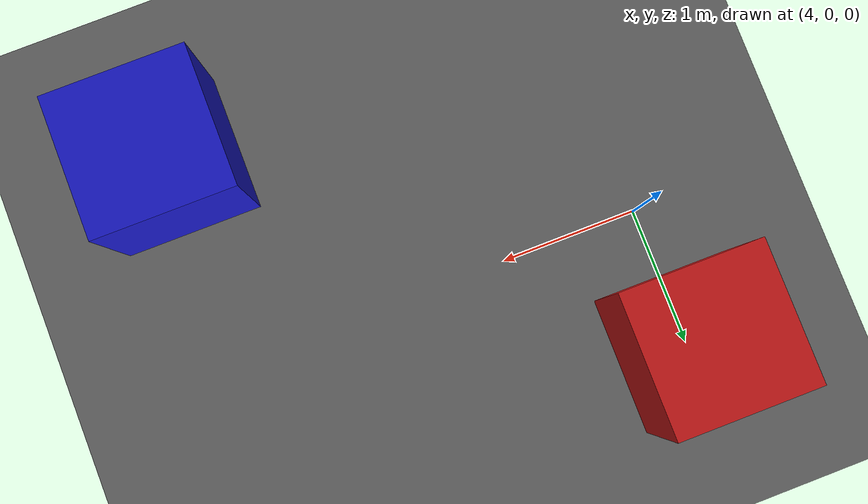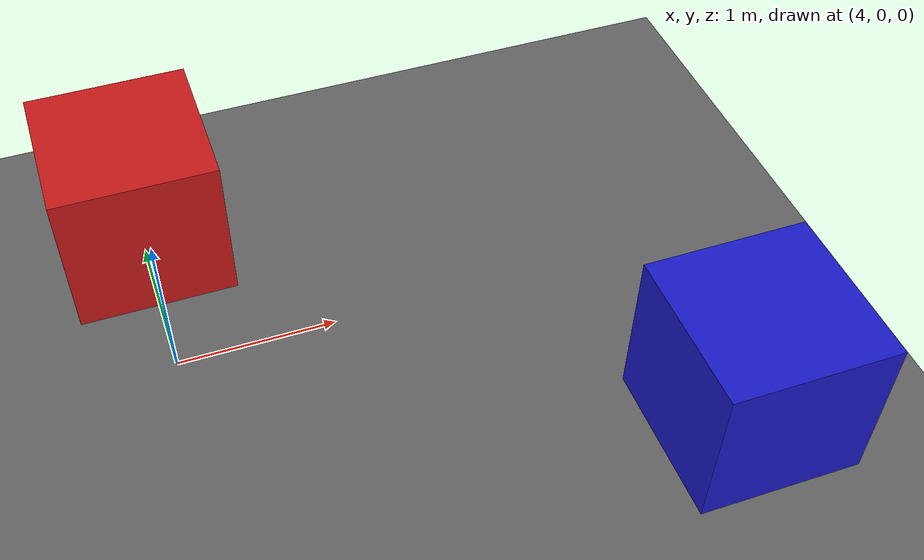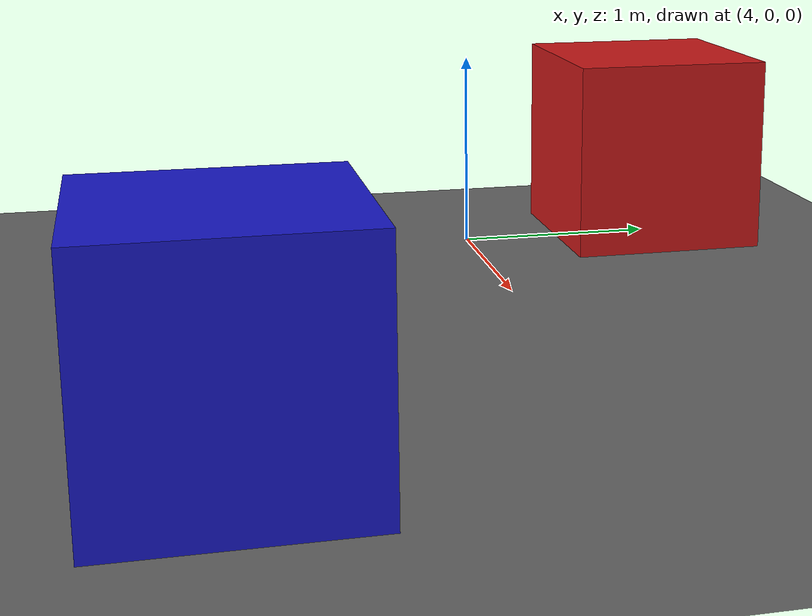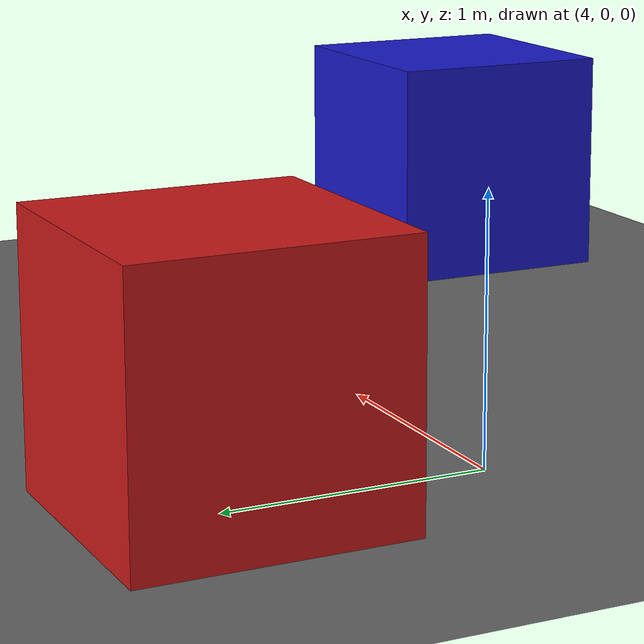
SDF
<?xml version="1.0" ?>
<sdf version="1.9">
  <world name="vp_track">

    <!-- Real-world anchor for the GPS/NavSat sensor: world (0,0,0) = this
         lat/lon (matches the placeholder in map_app.py / map.html). -->
    <spherical_coordinates>
      <surface_model>EARTH_WGS84</surface_model>
      <world_frame_orientation>ENU</world_frame_orientation>
      <latitude_deg>37.7749</latitude_deg>
      <longitude_deg>-122.4194</longitude_deg>
      <elevation>0</elevation>
      <heading_deg>0</heading_deg>
    </spherical_coordinates>

    <physics name="1ms" type="ignored">
      <max_step_size>0.001</max_step_size>
      <real_time_factor>1.0</real_time_factor>
    </physics>

    <plugin filename="gz-sim-physics-system" name="gz::sim::systems::Physics"/>
    <plugin filename="gz-sim-sensors-system" name="gz::sim::systems::Sensors">
      <render_engine>ogre2</render_engine>
    </plugin>
    <plugin filename="gz-sim-scene-broadcaster-system" name="gz::sim::systems::SceneBroadcaster"/>
    <plugin filename="gz-sim-user-commands-system" name="gz::sim::systems::UserCommands"/>

    <light type="directional" name="sun">
      <cast_shadows>true</cast_shadows>
      <pose>0 0 10 0 0 0</pose>
      <diffuse>0.8 0.8 0.8 1</diffuse>
      <specular>0.2 0.2 0.2 1</specular>
      <direction>-0.5 0.1 -0.9</direction>
    </light>

    <model name="ground_plane">
      <static>true</static>
      <link name="link">
        <collision name="collision">
          <geometry>
            <plane>
              <normal>0 0 1</normal>
              <size>100 100</size>
            </plane>
          </geometry>
        </collision>
        <visual name="visual">
          <geometry>
            <plane>
              <normal>0 0 1</normal>
              <size>100 100</size>
            </plane>
          </geometry>
          <material>
            <ambient>0.4 0.4 0.4 1</ambient>
            <diffuse>0.4 0.4 0.4 1</diffuse>
          </material>
        </visual>
      </link>
    </model>

    <!-- A few simple obstacles so SceneSeg has foreground objects to detect -->
    <model name="box_obstacle_1">
      <static>true</static>
      <pose>4 1 0.5 0 0 0</pose>
      <link name="link">
        <visual name="visual">
          <geometry><box><size>1 1 1</size></box></geometry>
          <material><ambient>0.8 0.1 0.1 1</ambient><diffuse>0.8 0.1 0.1 1</diffuse></material>
        </visual>
        <collision name="collision">
          <geometry><box><size>1 1 1</size></box></geometry>
        </collision>
      </link>
    </model>

    <model name="box_obstacle_2">
      <static>true</static>
      <pose>7 -1.5 0.5 0 0 0</pose>
      <link name="link">
        <visual name="visual">
          <geometry><box><size>1 1 1</size></box></geometry>
          <material><ambient>0.1 0.1 0.8 1</ambient><diffuse>0.1 0.1 0.8 1</diffuse></material>
        </visual>
        <collision name="collision">
          <geometry><box><size>1 1 1</size></box></geometry>
        </collision>
      </link>
    </model>

  </world>
</sdf>
